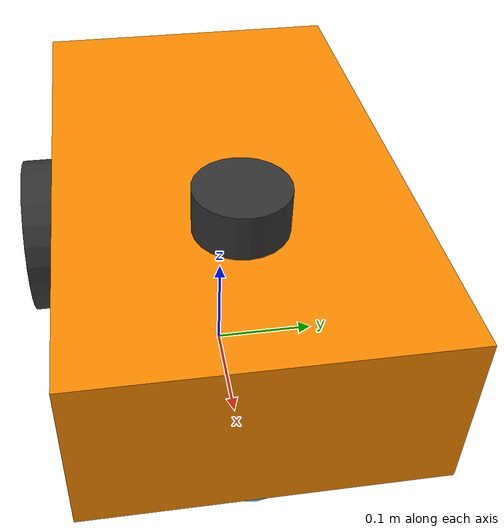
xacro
<?xml version="1.0"?>
<!-- Chiku: a 2-wheeled differential-drive delivery robot (REP 105: base_footprint on the ground, base_link on the body) -->
<robot name="chiku" xmlns:xacro="http://www.ros.org/wiki/xacro">
  <xacro:arg name="use_lidar" default="true"/>
  <xacro:include filename="../../common/urdf/macros.xacro"/>
  <xacro:property name="base_l" value="0.5"/>
  <xacro:property name="base_w" value="0.3"/>
  <xacro:property name="base_h" value="0.15"/>
  <xacro:property name="wheel_r" value="0.08"/>
  <xacro:property name="wheel_len" value="0.04"/>
  <xacro:property name="caster_r" value="${wheel_r/2}"/>

  <link name="base_footprint"/>
  <link name="base_link">
    <visual><origin xyz="0 0 ${base_h/2}"/><geometry><box size="${base_l} ${base_w} ${base_h}"/></geometry><material name="orange"/></visual>
    <collision><origin xyz="0 0 ${base_h/2}"/><geometry><box size="${base_l} ${base_w} ${base_h}"/></geometry></collision>
    <xacro:box_inertia m="4.0" x="${base_l}" y="${base_w}" z="${base_h}" xyz="0 0 ${base_h/2}"/>
  </link>
  <joint name="base_joint" type="fixed">
    <parent link="base_footprint"/><child link="base_link"/><origin xyz="0 0 ${wheel_r}"/>
  </joint>

  <xacro:macro name="wheel" params="side y_sign">
    <link name="${side}_wheel_link">
      <visual><origin rpy="${pi/2} 0 0"/><geometry><cylinder radius="${wheel_r}" length="${wheel_len}"/></geometry><material name="dark_grey"/></visual>
      <collision><origin rpy="${pi/2} 0 0"/><geometry><cylinder radius="${wheel_r}" length="${wheel_len}"/></geometry></collision>
      <xacro:cylinder_inertia m="0.4" r="${wheel_r}" h="${wheel_len}" rpy="${pi/2} 0 0"/>
    </link>
    <joint name="${side}_wheel_joint" type="continuous">
      <parent link="base_link"/><child link="${side}_wheel_link"/>
      <origin xyz="-0.1 ${y_sign*(base_w/2 + wheel_len/2)} 0"/><axis xyz="0 1 0"/>
    </joint>
  </xacro:macro>
  <xacro:wheel side="left" y_sign="1"/>
  <xacro:wheel side="right" y_sign="-1"/>

  <link name="caster_link">
    <visual><geometry><sphere radius="${caster_r}"/></geometry><material name="sky_blue"/></visual>
    <collision><geometry><sphere radius="${caster_r}"/></geometry></collision>
    <xacro:sphere_inertia m="0.1" r="${caster_r}"/>
  </link>
  <joint name="caster_joint" type="fixed">
    <parent link="base_link"/><child link="caster_link"/><origin xyz="0.18 0 ${caster_r - wheel_r}"/>
  </joint>
  <xacro:if value="$(arg use_lidar)">
    <link name="lidar_link">
      <visual><geometry><cylinder radius="0.04" length="0.04"/></geometry><material name="dark_grey"/></visual>
      <collision><geometry><cylinder radius="0.04" length="0.04"/></geometry></collision>
      <xacro:cylinder_inertia m="0.1" r="0.04" h="0.04"/>
    </link>
    <joint name="lidar_joint" type="fixed">
      <parent link="base_link"/><child link="lidar_link"/><origin xyz="0.1 0 ${base_h + 0.02}"/>
    </joint>
  </xacro:if>
</robot>

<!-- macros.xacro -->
<!-- Shared materials and inertia macros (solid box, cylinder along Z, sphere) -->
<robot xmlns:xacro="http://www.ros.org/wiki/xacro">
  <material name="orange"><color rgba="1.0 0.55 0.0 1.0"/></material>
  <material name="dark_grey"><color rgba="0.2 0.2 0.2 1.0"/></material>
  <material name="light_grey"><color rgba="0.75 0.75 0.78 1.0"/></material>
  <material name="sky_blue"><color rgba="0.3 0.7 1.0 1.0"/></material>
  <material name="green"><color rgba="0.2 0.75 0.35 1.0"/></material>
  <material name="red"><color rgba="0.9 0.2 0.2 1.0"/></material>
  <material name="white"><color rgba="0.95 0.95 0.95 1.0"/></material>
  <material name="prop_blue"><color rgba="0.3 0.6 1.0 0.6"/></material>

  <xacro:macro name="box_inertia" params="m x y z xyz:='0 0 0' rpy:='0 0 0'">
    <inertial>
      <origin xyz="${xyz}" rpy="${rpy}"/>
      <mass value="${m}"/>
      <inertia ixx="${m*(y*y+z*z)/12}" ixy="0" ixz="0" iyy="${m*(x*x+z*z)/12}" iyz="0" izz="${m*(x*x+y*y)/12}"/>
    </inertial>
  </xacro:macro>
  <xacro:macro name="cylinder_inertia" params="m r h xyz:='0 0 0' rpy:='0 0 0'">
    <inertial>
      <origin xyz="${xyz}" rpy="${rpy}"/>
      <mass value="${m}"/>
      <inertia ixx="${m*(3*r*r+h*h)/12}" ixy="0" ixz="0" iyy="${m*(3*r*r+h*h)/12}" iyz="0" izz="${m*r*r/2}"/>
    </inertial>
  </xacro:macro>
  <xacro:macro name="sphere_inertia" params="m r xyz:='0 0 0'">
    <inertial>
      <origin xyz="${xyz}"/>
      <mass value="${m}"/>
      <inertia ixx="${2*m*r*r/5}" ixy="0" ixz="0" iyy="${2*m*r*r/5}" iyz="0" izz="${2*m*r*r/5}"/>
    </inertial>
  </xacro:macro>
</robot>
